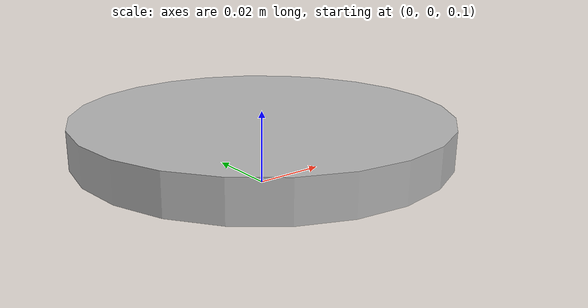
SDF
<?xml version='1.0'?>
<sdf version='1.4'>
  <model name="mark_label_circle">
    <link name='link'>
      <pose>0 0 0.115 0 0 0</pose>
      <inertial>
        <mass>.990</mass>
        <inertia>
          <ixx>0.00058</ixx>
          <ixy>0</ixy>
          <ixz>0</ixz>
          <iyy>0.00058</iyy>
          <iyz>0</iyz>
          <izz>0.00019</izz>
        </inertia>
      </inertial>
      <collision name='collision'>
            <geometry>
                <cylinder>
                    <radius>.05</radius>
                    <length>.01</length>
                </cylinder>
            </geometry>
      </collision>

      <visual name='visual'>
        <geometry>
                <cylinder>
                  <radius>.05</radius>
                  <length>.01</length>>
                </cylinder>
        </geometry>

        <material>
          <script>
            <uri>model://mark_label_circle/materials/scripts</uri>
            <uri>model://mark_label_circle/materials/textures</uri>
            <name>Mark/Diffuse_circle</name>
          </script>
        </material>
      </visual>
    </link>     
  </model>
</sdf>
